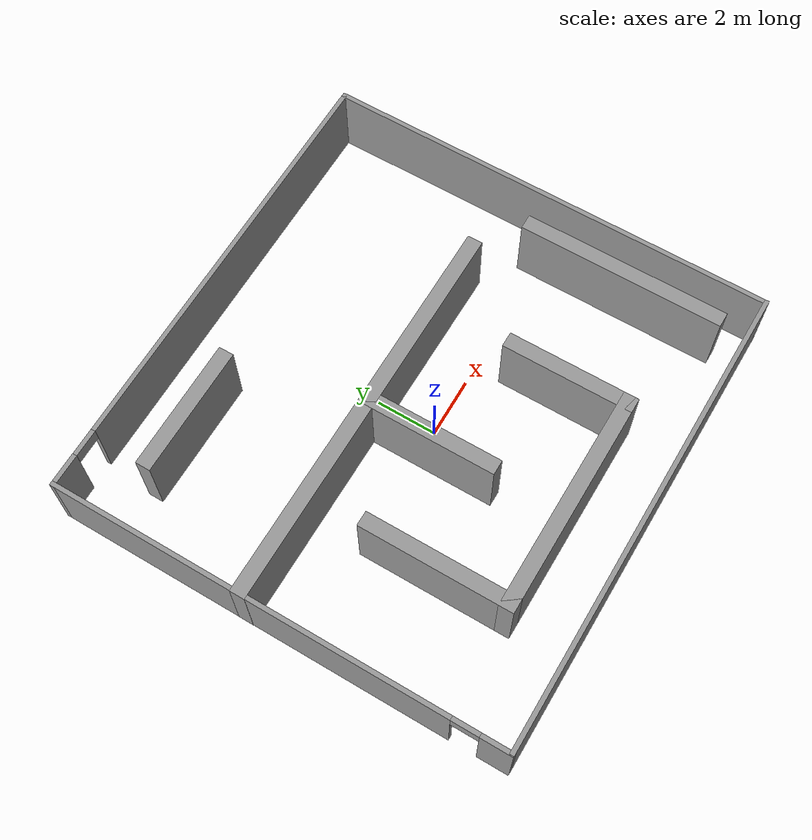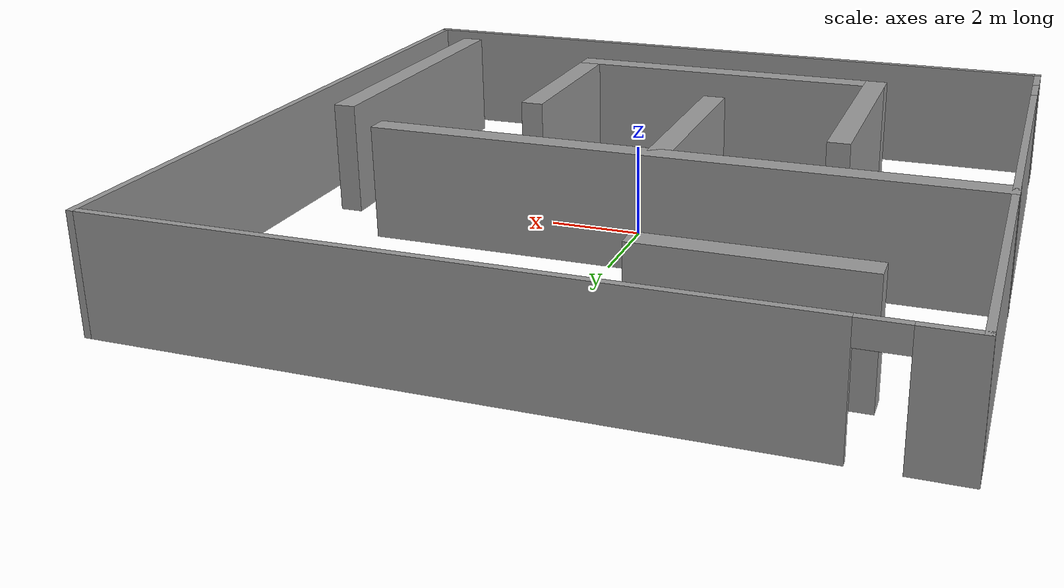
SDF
<?xml version='1.0'?>
<sdf version='1.7'>
  <model name='jh_world'>
    <pose>0.014043 0.527078 0 0 -0 0</pose>
    <link name='Wall_20'>
      <collision name='Wall_20_Collision'>
        <geometry>
          <box>
            <size>16 0.15 2.5</size>
          </box>
        </geometry>
        <pose>0 0 1.25 0 -0 0</pose>
      </collision>
      <visual name='Wall_20_Visual'>
        <pose>0 0 1.25 0 -0 0</pose>
        <geometry>
          <box>
            <size>16 0.15 2.5</size>
          </box>
        </geometry>
        <material>
          <script>
            <uri>file://media/materials/scripts/gazebo.material</uri>
            <name>Gazebo/Grey</name>
          </script>
          <ambient>1 1 1 1</ambient>
        </material>
        <meta>
          <layer>0</layer>
        </meta>
      </visual>
      <pose>0.003119 -7.55 0 0 -0 0</pose>
    </link>
    <link name='Wall_21'>
      <collision name='Wall_21_Collision'>
        <geometry>
          <box>
            <size>15.25 0.15 2.5</size>
          </box>
        </geometry>
        <pose>0 0 1.25 0 -0 0</pose>
      </collision>
      <visual name='Wall_21_Visual'>
        <pose>0 0 1.25 0 -0 0</pose>
        <geometry>
          <box>
            <size>15.25 0.15 2.5</size>
          </box>
        </geometry>
        <material>
          <script>
            <uri>file://media/materials/scripts/gazebo.material</uri>
            <name>Gazebo/Grey</name>
          </script>
          <ambient>1 1 1 1</ambient>
        </material>
        <meta>
          <layer>0</layer>
        </meta>
      </visual>
      <pose>7.92812 -0 0 0 -0 1.5708</pose>
    </link>
    <link name='Wall_22'>
      <pose>0.003119 7.55 0 0 -0 3.14159</pose>
      <visual name='Wall_22_Visual_0'>
        <pose>-1.0152 0 1.25 0 -0 0</pose>
        <geometry>
          <box>
            <size>13.9696 0.15 2.5</size>
          </box>
        </geometry>
        <material>
          <script>
            <uri>file://media/materials/scripts/gazebo.material</uri>
            <name>Gazebo/Grey</name>
          </script>
          <ambient>1 1 1 1</ambient>
        </material>
        <meta>
          <layer>0</layer>
        </meta>
      </visual>
      <collision name='Wall_22_Collision_0'>
        <geometry>
          <box>
            <size>13.9696 0.15 2.5</size>
          </box>
        </geometry>
        <pose>-1.0152 0 1.25 0 -0 0</pose>
      </collision>
      <visual name='Wall_22_Visual_1'>
        <pose>7.4348 0 1.25 0 -0 0</pose>
        <geometry>
          <box>
            <size>1.1304 0.15 2.5</size>
          </box>
        </geometry>
        <material>
          <script>
            <uri>file://media/materials/scripts/gazebo.material</uri>
            <name>Gazebo/Grey</name>
          </script>
          <ambient>1 1 1 1</ambient>
        </material>
        <meta>
          <layer>0</layer>
        </meta>
      </visual>
      <collision name='Wall_22_Collision_1'>
        <geometry>
          <box>
            <size>1.1304 0.15 2.5</size>
          </box>
        </geometry>
        <pose>7.4348 0 1.25 0 -0 0</pose>
      </collision>
      <visual name='Wall_22_Visual_2'>
        <pose>6.4196 0 2.25 0 -0 0</pose>
        <geometry>
          <box>
            <size>0.9 0.15 0.5</size>
          </box>
        </geometry>
        <material>
          <script>
            <uri>file://media/materials/scripts/gazebo.material</uri>
            <name>Gazebo/Grey</name>
          </script>
          <ambient>1 1 1 1</ambient>
        </material>
        <meta>
          <layer>0</layer>
        </meta>
      </visual>
      <collision name='Wall_22_Collision_2'>
        <geometry>
          <box>
            <size>0.9 0.15 0.5</size>
          </box>
        </geometry>
        <pose>6.4196 0 2.25 0 -0 0</pose>
      </collision>
    </link>
    <link name='Wall_23'>
      <pose>-7.92188 -0 0 0 -0 -1.5708</pose>
      <visual name='Wall_23_Visual_0'>
        <pose>-0.973634 0 1.25 0 -0 0</pose>
        <geometry>
          <box>
            <size>13.3027 0.15 2.5</size>
          </box>
        </geometry>
        <material>
          <script>
            <uri>file://media/materials/scripts/gazebo.material</uri>
            <name>Gazebo/Grey</name>
          </script>
          <ambient>1 1 1 1</ambient>
        </material>
        <meta>
          <layer>0</layer>
        </meta>
      </visual>
      <collision name='Wall_23_Collision_0'>
        <geometry>
          <box>
            <size>13.3027 0.15 2.5</size>
          </box>
        </geometry>
        <pose>-0.973634 0 1.25 0 -0 0</pose>
      </collision>
      <visual name='Wall_23_Visual_1'>
        <pose>7.10137 0 1.25 0 -0 0</pose>
        <geometry>
          <box>
            <size>1.04727 0.15 2.5</size>
          </box>
        </geometry>
        <material>
          <script>
            <uri>file://media/materials/scripts/gazebo.material</uri>
            <name>Gazebo/Grey</name>
          </script>
          <ambient>1 1 1 1</ambient>
        </material>
        <meta>
          <layer>0</layer>
        </meta>
      </visual>
      <collision name='Wall_23_Collision_1'>
        <geometry>
          <box>
            <size>1.04727 0.15 2.5</size>
          </box>
        </geometry>
        <pose>7.10137 0 1.25 0 -0 0</pose>
      </collision>
      <visual name='Wall_23_Visual_2'>
        <pose>6.12773 0 2.25 0 -0 0</pose>
        <geometry>
          <box>
            <size>0.9 0.15 0.5</size>
          </box>
        </geometry>
        <material>
          <script>
            <uri>file://media/materials/scripts/gazebo.material</uri>
            <name>Gazebo/Grey</name>
          </script>
          <ambient>1 1 1 1</ambient>
        </material>
        <meta>
          <layer>0</layer>
        </meta>
      </visual>
      <collision name='Wall_23_Collision_2'>
        <geometry>
          <box>
            <size>0.9 0.15 0.5</size>
          </box>
        </geometry>
        <pose>6.12773 0 2.25 0 -0 0</pose>
      </collision>
    </link>
    <link name='Wall_25'>
      <collision name='Wall_25_Collision'>
        <geometry>
          <box>
            <size>4.35 0.5 2.5</size>
          </box>
        </geometry>
        <pose>0 0 1.25 0 -0 0</pose>
      </collision>
      <visual name='Wall_25_Visual'>
        <pose>0 0 1.25 0 -0 0</pose>
        <geometry>
          <box>
            <size>4.35 0.5 2.5</size>
          </box>
        </geometry>
        <material>
          <script>
            <uri>file://media/materials/scripts/gazebo.material</uri>
            <name>Gazebo/Grey</name>
          </script>
          <ambient>1 1 1 1</ambient>
        </material>
        <meta>
          <layer>0</layer>
        </meta>
      </visual>
      <pose>-3.99804 5.65292 0 0 -0 0</pose>
    </link>
    <link name='Wall_27'>
      <collision name='Wall_27_Collision'>
        <geometry>
          <box>
            <size>13.35 0.5 2.5</size>
          </box>
        </geometry>
        <pose>0 0 1.25 0 -0 0</pose>
      </collision>
      <visual name='Wall_27_Visual'>
        <pose>0 0 1.25 0 -0 0</pose>
        <geometry>
          <box>
            <size>13.35 0.5 2.5</size>
          </box>
        </geometry>
        <material>
          <script>
            <uri>file://media/materials/scripts/gazebo.material</uri>
            <name>Gazebo/Grey</name>
          </script>
          <ambient>1 1 1 1</ambient>
        </material>
        <meta>
          <layer>0</layer>
        </meta>
      </visual>
      <pose>-1.32812 1.1708 0 0 -0 0</pose>
    </link>
    <link name='Wall_29'>
      <collision name='Wall_29_Collision'>
        <geometry>
          <box>
            <size>4.6 0.5 2.5</size>
          </box>
        </geometry>
        <pose>0 0 1.25 0 -0 0</pose>
      </collision>
      <visual name='Wall_29_Visual'>
        <pose>0 0 1.25 0 -0 0</pose>
        <geometry>
          <box>
            <size>4.6 0.5 2.5</size>
          </box>
        </geometry>
        <material>
          <script>
            <uri>file://media/materials/scripts/gazebo.material</uri>
            <name>Gazebo/Grey</name>
          </script>
          <ambient>1 1 1 1</ambient>
        </material>
        <meta>
          <layer>0</layer>
        </meta>
      </visual>
      <pose>-0.967603 -0.899199 0 0 -0 -1.5708</pose>
    </link>
    <link name='Wall_31'>
      <collision name='Wall_31_Collision'>
        <geometry>
          <box>
            <size>5.10015 0.5 2.5</size>
          </box>
        </geometry>
        <pose>0 0 1.25 0 -0 0</pose>
      </collision>
      <visual name='Wall_31_Visual'>
        <pose>0 0 1.25 0 -0 0</pose>
        <geometry>
          <box>
            <size>5.10015 0.5 2.5</size>
          </box>
        </geometry>
        <material>
          <script>
            <uri>file://media/materials/scripts/gazebo.material</uri>
            <name>Gazebo/Grey</name>
          </script>
          <ambient>1 1 1 1</ambient>
        </material>
        <meta>
          <layer>0</layer>
        </meta>
      </visual>
      <pose>-4.29904 -3.16408 0 0 -0 -1.5708</pose>
    </link>
    <link name='Wall_32'>
      <collision name='Wall_32_Collision'>
        <geometry>
          <box>
            <size>7.6003 0.5 2.5</size>
          </box>
        </geometry>
        <pose>0 0 1.25 0 -0 0</pose>
      </collision>
      <visual name='Wall_32_Visual'>
        <pose>0 0 1.25 0 -0 0</pose>
        <geometry>
          <box>
            <size>7.6003 0.5 2.5</size>
          </box>
        </geometry>
        <material>
          <script>
            <uri>file://media/materials/scripts/gazebo.material</uri>
            <name>Gazebo/Grey</name>
          </script>
          <ambient>1 1 1 1</ambient>
        </material>
        <meta>
          <layer>0</layer>
        </meta>
      </visual>
      <pose>-0.749043 -5.46408 0 0 -0 0</pose>
    </link>
    <link name='Wall_33'>
      <collision name='Wall_33_Collision'>
        <geometry>
          <box>
            <size>4.34985 0.5 2.5</size>
          </box>
        </geometry>
        <pose>0 0 1.25 0 -0 0</pose>
      </collision>
      <visual name='Wall_33_Visual'>
        <pose>0 0 1.25 0 -0 0</pose>
        <geometry>
          <box>
            <size>4.34985 0.5 2.5</size>
          </box>
        </geometry>
        <material>
          <script>
            <uri>file://media/materials/scripts/gazebo.material</uri>
            <name>Gazebo/Grey</name>
          </script>
          <ambient>1 1 1 1</ambient>
        </material>
        <meta>
          <layer>0</layer>
        </meta>
      </visual>
      <pose>2.80096 -3.53908 0 0 -0 1.5708</pose>
    </link>
    <link name='Wall_35'>
      <collision name='Wall_35_Collision'>
        <geometry>
          <box>
            <size>6.85041 0.5 2.5</size>
          </box>
        </geometry>
        <pose>0 0 1.25 0 -0 0</pose>
      </collision>
      <visual name='Wall_35_Visual'>
        <pose>0 0 1.25 0 -0 0</pose>
        <geometry>
          <box>
            <size>6.85041 0.5 2.5</size>
          </box>
        </geometry>
        <material>
          <script>
            <uri>file://media/materials/scripts/gazebo.material</uri>
            <name>Gazebo/Grey</name>
          </script>
          <ambient>1 1 1 1</ambient>
        </material>
        <meta>
          <layer>0</layer>
        </meta>
      </visual>
      <pose>6.72196 -3.27808 0 0 -0 -1.5708</pose>
    </link>
    <static>1</static>
  </model>
</sdf>
